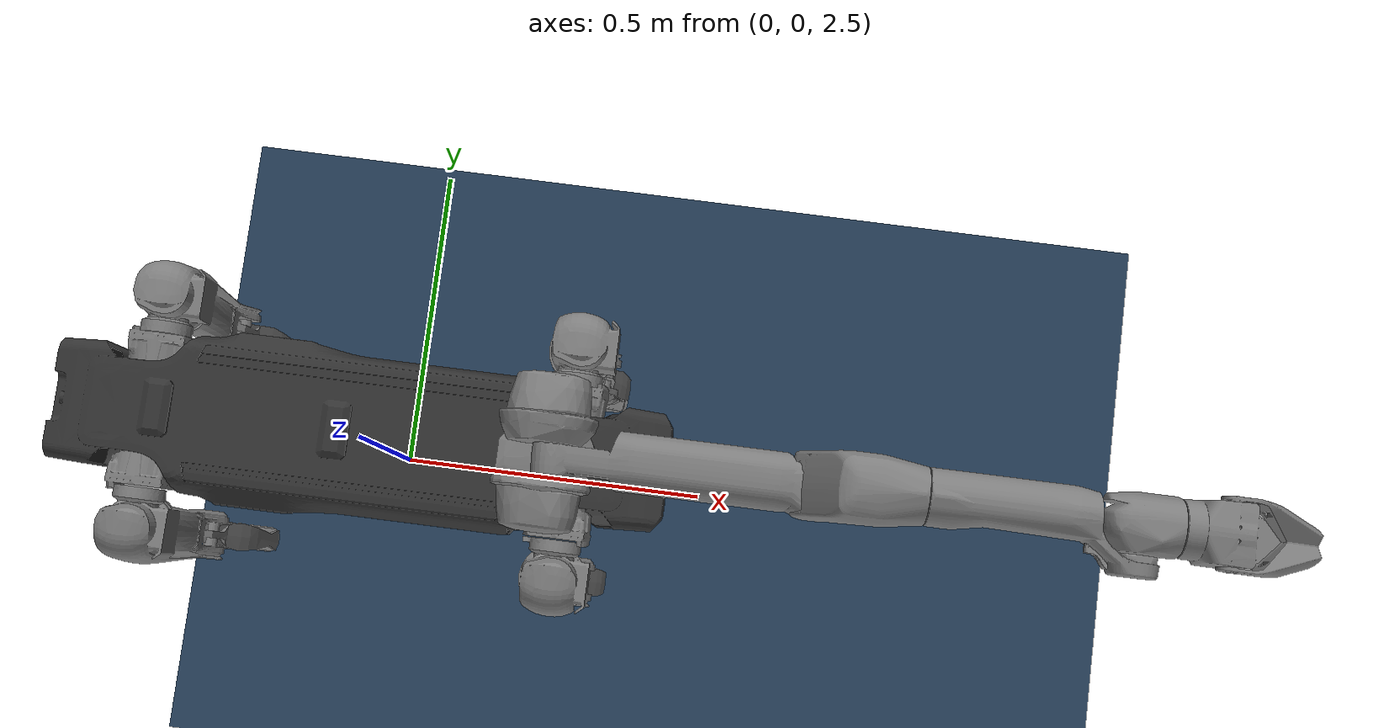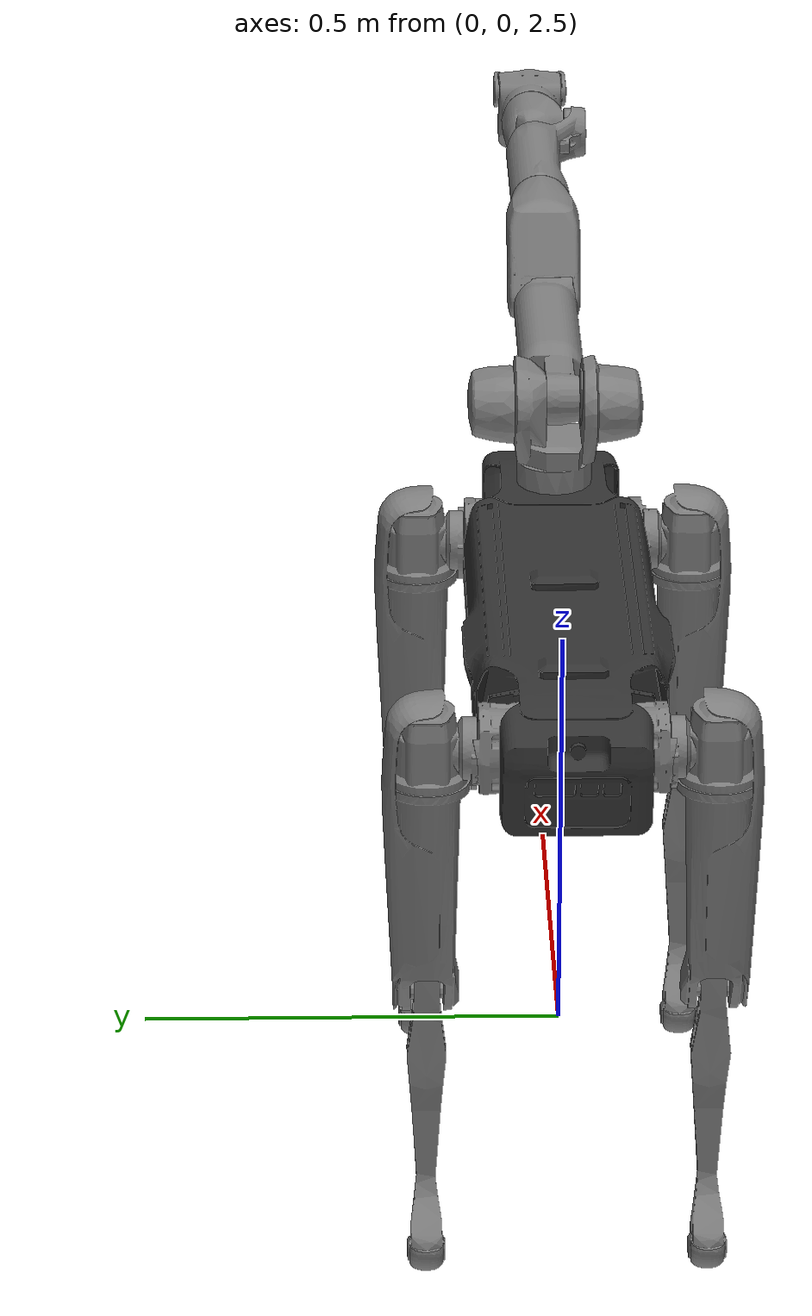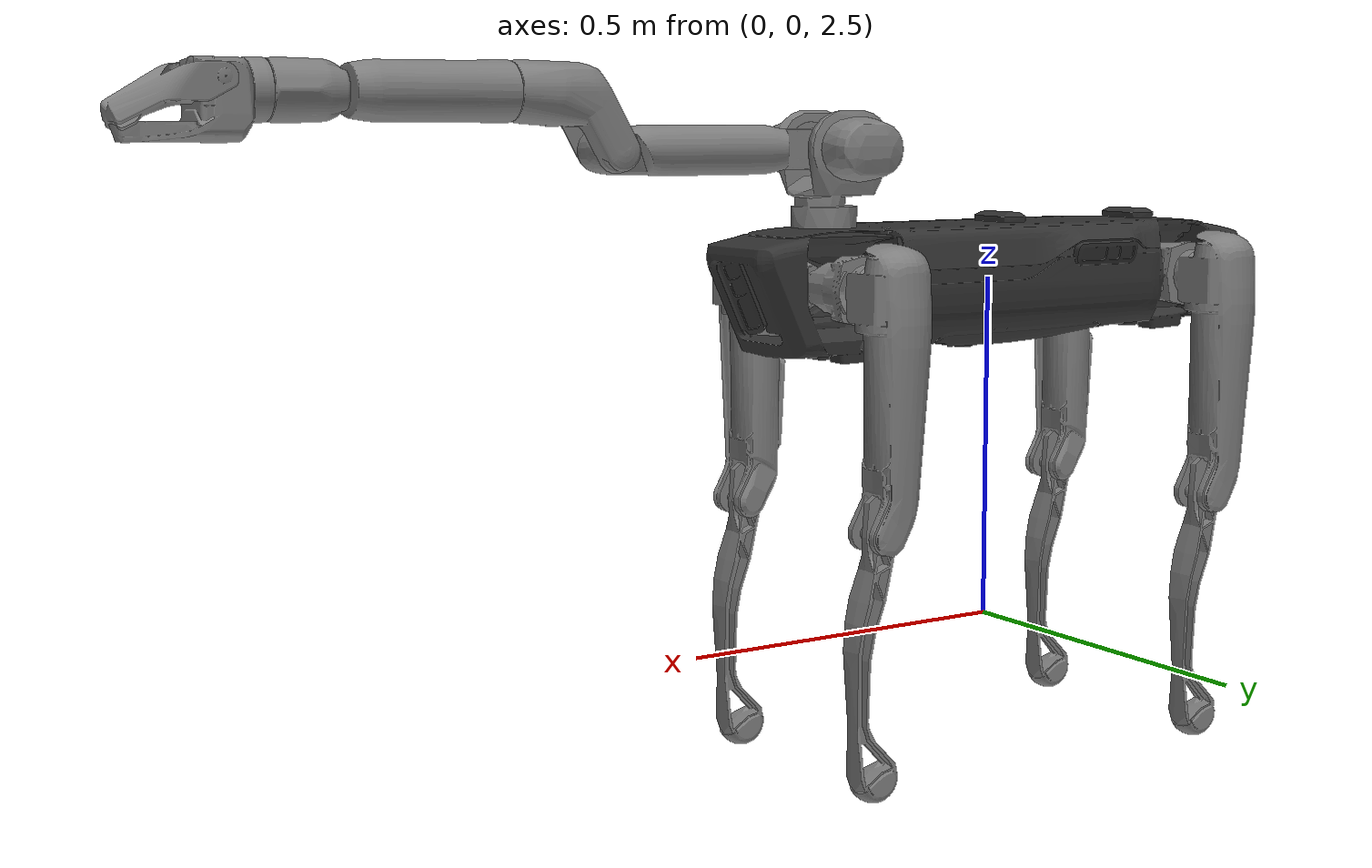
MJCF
<mujoco model="spot">
    <compiler angle="radian" meshdir="./meshes" />
    <size njmax="500" nconmax="100" />

    <default class="a1">
      <geom friction="0.6" margin="0.001"/>
      <joint axis="0 1 0" damping="2" armature="0.01" frictionloss="0.2"/>
      <position kp="100" forcerange="-33.5 33.5" forcelimited="true"/>
      <default class="abduction">
        <joint axis="1 0 0" damping="1" range="-0.802851 0.802851"/>
        <position ctrlrange="-0.802851 0.802851" ctrllimited="true"/>
      </default>
      <default class="hip">
        <joint range="-1.0472 4.18879"/>
        <position ctrlrange="-1.0472 4.18879" ctrllimited="true"/>
      </default>
      <default class="knee">
        <joint range="-2.69653 -0.916298"/>
        <position ctrlrange="-2.69653 -0.916298" ctrllimited="true"/>
      </default>
      <default class="visual">
        <geom type="mesh" contype="0" conaffinity="0" group="2" material="dark"/>
      </default>
      <default class="collision">
        <geom group="3" type="capsule"/>
        <default class="hip_left">
          <geom size="0.04 0.04" quat="1 1 0 0" type="cylinder" pos="0 0.055 0"/>
        </default>
        <default class="hip_right">
          <geom size="0.04 0.04" quat="1 1 0 0" type="cylinder" pos="0 -0.055 0"/>
        </default>
        <default class="thigh1">
          <geom size="0.015" fromto="-0.02 0 0 -0.02 0 -0.16"/>
        </default>
        <default class="thigh2">
          <geom size="0.015" fromto="0 0 0 -0.02 0 -0.1"/>
        </default>
        <default class="thigh3">
          <geom size="0.015" fromto="-0.02 0 -0.16 0 0 -0.2"/>
        </default>
        <default class="calf1">
          <geom size="0.01" fromto="0 0 0 0.02 0 -0.13"/>
        </default>
        <default class="calf2">
          <geom size="0.01" fromto="0.02 0 -0.13 0 0 -0.2"/>
        </default>
        <default class="foot">
          <geom type="sphere" size="0.02" pos="0 0 -0.2" priority="1" solimp="0.015 1 0.031"
              condim="6" friction="0.8 0.02 0.01"/>
        </default>
      </default>

    <default class="arm">
      <material specular="0.5" shininess="0.25"/>
      <joint armature="0.1" damping="1" axis="0 0 1" range="-2.8973 2.8973"/>
      <general dyntype="none" biastype="affine" ctrlrange="-2.8973 2.8973" ctrllimited="true" forcerange="-87 87" forcelimited="true"/>
      <default class="finger">
        <joint axis="0 1 0" type="slide" range="0 0.04"/>
      </default>
    </default>

    </default>

    <asset>
        <texture type="skybox" builtin="gradient" rgb1="0.3 0.5 0.7" rgb2="0 0 0" width="512"
            height="3072"/>
        <texture type="2d" name="groundplane" builtin="checker" mark="edge" rgb1="0.2 0.3 0.4"
            rgb2="0.1 0.2 0.3" markrgb="0.8 0.8 0.8" width="300" height="300"/>
        <material name="groundplane" texture="groundplane" texuniform="true" texrepeat="5 5"
            reflectance="0.2"/>

        <mesh name="spot_body" file="spot_body.stl" />
        <mesh name="fl_hip" file="fl_hip.stl" />
        <mesh name="fr_hip" file="fr_hip.stl" />
        <mesh name="hl_hip" file="hl_hip.stl" />
        <mesh name="hr_hip" file="hr_hip.stl" />
        <mesh name="fl_uleg" file="fl_uleg.stl" />
        <mesh name="fr_uleg" file="fr_uleg.stl" />
        <mesh name="hl_uleg" file="hl_uleg.stl" />
        <mesh name="hr_uleg" file="hr_uleg.stl" />
        <mesh name="lleg" file="lleg.stl" />
        <mesh name="arm0_link_sh0" file="arm0_link_sh0.stl" />
        <mesh name="arm0_link_sh1" file="arm0_link_sh1.stl" />
        <mesh name="arm0_link_hr0" file="arm0_link_hr0.stl" />
        <mesh name="arm0_link_el0" file="arm0_link_el0.stl" />
        <mesh name="arm0_link_el1" file="arm0_link_el1.stl" />
        <mesh name="arm0_link_wr0" file="arm0_link_wr0.stl" />
        <mesh name="arm0_link_wr1" file="arm0_link_wr1.stl" />
        <mesh name="arm0_link_fngr" file="arm0_link_fngr.stl" />
    </asset>
    <worldbody>
        <light pos="0 0 1.5" dir="0 0 -1" directional="true"/>
        <geom name="floor" size="0 0 0.05" type="plane" material="groundplane"/>

        <body name="base" pos="0 0 3">
            <inertial pos="0 0 -0.00496172" quat="0 0.707107 0 0.707107" mass="16.7077" diaginertia="0.569454 0.549231 0.0815438" />
            <joint name="world_joint" type="free" />
            <geom type="mesh" contype="0" conaffinity="1" group="1" rgba="0.2 0.2 0.2 1" mesh="spot_body" />
            <body name="fl.hip" pos="0.29785 0.055 0">
                <inertial pos="-0.0158674 0.00855842 9.03e-06" quat="-0.137996 0.694859 0.131743 0.693377" mass="1.13688" diaginertia="0.00172904 0.00166127 0.00114996" />
                <joint name="fl.hx" pos="0 0 0" axis="1 0 0" limited="true" range="-0.785398 0.785398" />
                <geom type="mesh" contype="0" conaffinity="1" group="1" mesh="fl_hip" />
                <body name="fl.uleg" pos="0 0.110945 0">
                    <inertial pos="0.00214442 -0.0111018 -0.078812" quat="0.998684 0.0454551 -0.0106253 -0.0212473" mass="2.2562" diaginertia="0.0269394 0.0260254 0.00298666" />
                    <joint name="fl.hy" pos="0 0 0" axis="0 1 0" limited="true" range="-0.898845 2.29511" />
                    <geom type="mesh" contype="0" conaffinity="1" group="1" mesh="fl_uleg" />
                    <body name="fl.lleg" pos="0.025 0 -0.3205">
                        <inertial pos="0.0059736 0 -0.174664" quat="0.707099 -0.00339701 -0.00339701 0.707099" mass="0.33" diaginertia="0.00709946 0.00701419 0.000144656" />
                        <joint name="fl.kn" pos="0 0 0" axis="0 1 0" limited="true" range="-2.7929 -0.2471" />
                        <geom type="mesh" contype="0" conaffinity="1" group="1" mesh="lleg" />
                    </body>
                </body>
            </body>
            <body name="fr.hip" pos="0.29785 -0.055 0">
                <inertial pos="-0.0158674 -0.00855842 9.03e-06" quat="0.137996 0.694859 -0.131743 0.693377" mass="1.13688" diaginertia="0.00172904 0.00166127 0.00114996" />
                <joint name="fr.hx" pos="0 0 0" axis="1 0 0" limited="true" range="-0.785398 0.785398" />
                <geom type="mesh" contype="0" conaffinity="1" group="1" mesh="fr_hip" />
                <body name="fr.uleg" pos="0 -0.110945 0">
                    <inertial pos="0.00214442 0.0111018 -0.078812" quat="0.998684 -0.0454551 -0.0106253 0.0212473" mass="2.2562" diaginertia="0.0269394 0.0260254 0.00298666" />
                    <joint name="fr.hy" pos="0 0 0" axis="0 1 0" limited="true" range="-0.898845 2.29511" />
                    <geom type="mesh" contype="0" conaffinity="1" group="1" mesh="fr_uleg" />
                    <body name="fr.lleg" pos="0.025 0 -0.3205">
                        <inertial pos="0.0059736 0 -0.174664" quat="0.707099 -0.00339701 -0.00339701 0.707099" mass="0.33" diaginertia="0.00709946 0.00701419 0.000144656" />
                        <joint name="fr.kn" pos="0 0 0" axis="0 1 0" limited="true" range="-2.7929 -0.2471" />
                        <geom type="mesh" contype="0" conaffinity="1" group="1" mesh="lleg" />
                    </body>
                </body>
            </body>
            <body name="hl.hip" pos="-0.29785 0.055 0">
                <inertial pos="0.0158674 0.00855842 9.03e-06" quat="0.131743 0.693377 -0.137996 0.694859" mass="1.13688" diaginertia="0.00172904 0.00166127 0.00114996" />
                <joint name="hl.hx" pos="0 0 0" axis="1 0 0" limited="true" range="-0.785398 0.785398" />
                <geom type="mesh" contype="0" conaffinity="1" group="1" mesh="hl_hip" />
                <body name="hl.uleg" pos="0 0.110945 0">
                    <inertial pos="0.00214442 -0.0111018 -0.078812" quat="0.998684 0.0454551 -0.0106253 -0.0212473" mass="2.2562" diaginertia="0.0269394 0.0260254 0.00298666" />
                    <joint name="hl.hy" pos="0 0 0" axis="0 1 0" limited="true" range="-0.898845 2.29511" />
                    <geom type="mesh" contype="0" conaffinity="1" group="1" mesh="hl_uleg" />
                    <body name="hl.lleg" pos="0.025 0 -0.3205">
                        <inertial pos="0.0059736 0 -0.174664" quat="0.707099 -0.00339701 -0.00339701 0.707099" mass="0.33" diaginertia="0.00709946 0.00701419 0.000144656" />
                        <joint name="hl.kn" pos="0 0 0" axis="0 1 0" limited="true" range="-2.7929 -0.2471" />
                        <geom type="mesh" contype="0" conaffinity="1" group="1" mesh="lleg" />
                    </body>
                </body>
            </body>
            <body name="hr.hip" pos="-0.29785 -0.055 0">
                <inertial pos="0.0158674 -0.00855842 9.03e-06" quat="-0.131743 0.693377 0.137996 0.694859" mass="1.13688" diaginertia="0.00172904 0.00166127 0.00114996" />
                <joint name="hr.hx" pos="0 0 0" axis="1 0 0" limited="true" range="-0.785398 0.785398" />
                <geom type="mesh" contype="0" conaffinity="1" group="1" mesh="hr_hip" />
                <body name="hr.uleg" pos="0 -0.110945 0">
                    <inertial pos="0.00214442 0.0111018 -0.078812" quat="0.998684 -0.0454551 -0.0106253 0.0212473" mass="2.2562" diaginertia="0.0269394 0.0260254 0.00298666" />
                    <joint name="hr.hy" pos="0 0 0" axis="0 1 0" limited="true" range="-0.898845 2.29511" />
                    <geom type="mesh" contype="0" conaffinity="1" group="1" mesh="hr_uleg" />
                    <body name="hr.lleg" pos="0.025 0 -0.3205">
                        <inertial pos="0.0059736 0 -0.174664" quat="0.707099 -0.00339701 -0.00339701 0.707099" mass="0.33" diaginertia="0.00709946 0.00701419 0.000144656" />
                        <joint name="hr.kn" pos="0 0 0" axis="0 1 0" limited="true" range="-2.7929 -0.2471" />
                        <geom type="mesh" contype="0" conaffinity="1" group="1" mesh="lleg" />
                    </body>
                </body>
            </body>
            <body name="arm0.link_sh0" pos="0.292 0 0.188">
                <inertial pos="-0.008399 0.000272 -0.024603" quat="0.710827 0.700855 0.0423863 -0.0416066" mass="1.9047" diaginertia="0.00891905 0.00728042 0.00492153" />
                <joint name="arm0.sh0" pos="0 0 0" axis="0 0 1" limited="true" range="-2.61799 3.14159" frictionloss="10" />
                <geom type="mesh" contype="1" conaffinity="1" group="1" mesh="arm0_link_sh0" />
                <body name="arm0.link_sh1" pos="0 0 0">
                    <inertial pos="0.0808491 -0.00167243 0.00045644" quat="-0.00467017 0.708456 0.00702831 0.705705" mass="1.85702" diaginertia="0.0281997 0.0270454 0.00260818" />
                    <joint name="arm0.sh1" pos="0 0 0" axis="0 1 0" limited="true" range="-3.14159 0.523599" frictionloss="10" />
                    <geom type="mesh" contype="1" conaffinity="1" group="1" mesh="arm0_link_sh1" />
                    <geom type="mesh" contype="1" conaffinity="1" group="1" mesh="arm0_link_hr0" />
                    <body name="arm0.link_el0" pos="0.3385 0 0">
                        <inertial pos="0.0447662 -0.0027113 0.0499136" quat="0.0923782 0.888458 0.19384 0.40563" mass="0.94832" diaginertia="0.00286401 0.00265579 0.000960161" />
                        <joint name="arm0.el0" pos="0 0 0" axis="0 1 0" limited="true" range="0 3.14159" frictionloss="10" />
                        <geom type="mesh" contype="1" conaffinity="1" group="1" mesh="arm0_link_el0" />
                        <body name="arm0.link_el1" pos="0.4033 0 0.075">
                            <inertial pos="-0.168671 -0.0161612 1.149e-05" quat="0.488034 0.425158 0.565043 0.511654" mass="1.01755" diaginertia="0.0169253 0.0168986 0.000746021" />
                            <joint name="arm0.el1" pos="0 0 0" axis="1 0 0" limited="true" range="-2.79253 2.79253" frictionloss="10" />
                            <geom type="mesh" contype="1" conaffinity="1" group="1" mesh="arm0_link_el1" />
                            <body name="arm0.link_wr0" pos="0 0 0">
                                <inertial pos="0.00952465 -0.0114441 1.86e-06" quat="0.308237 0.652328 -0.273781 0.636005" mass="0.582637" diaginertia="0.000536182 0.000528639 0.000388399" />
                                <joint name="arm0.wr0" pos="0 0 0" axis="0 1 0" limited="true" range="-1.8326 1.8326" frictionloss="10" />
                                <geom type="mesh" contype="1" conaffinity="1" group="1" mesh="arm0_link_wr0" />
                                <body name="arm0.link_wr1" pos="0 0 0">
                                    <inertial pos="0.0975128 9.265e-05 -0.0112052" quat="0.592778 0.385047 0.386229 0.592605" mass="0.933353" diaginertia="0.00197018 0.00182151 0.00082476" />
                                    <joint name="arm0.wr1" pos="0 0 0" axis="1 0 0" limited="true" range="-2.87989 2.87979" frictionloss="10" />
                                    <geom type="mesh" contype="1" conaffinity="1" group="1" mesh="arm0_link_wr1" />
                                    <body name="arm0.link_fngr" pos="0.11745 0 0.01482">
                                        <inertial pos="0.0356518 0.000672 -0.0122752" quat="0.00481109 0.567709 0.0124565 0.823121" mass="0.223833" diaginertia="0.000648792 0.000484516 0.000194933" />
                                        <joint name="arm0.f1x" pos="0 0 0" axis="0 1 0" limited="true" range="-1.5708 0" frictionloss="10" />
                                        <geom type="mesh" contype="1" conaffinity="1" group="1" mesh="arm0_link_fngr" />
                                    </body>
                                </body>
                            </body>
                        </body>
                    </body>
                </body>
            </body>
        </body>
    </worldbody>

  <actuator>
    <position class="abduction" name="FR_hip" joint="fr.hx"/>
    <position class="hip" name="FR_thigh" joint="fr.hy"/>
    <position class="knee" name="FR_calf" joint="fr.kn"/>

    <position class="abduction" name="FL_hip" joint="fl.hx"/>
    <position class="hip" name="FL_thigh" joint="fl.hy"/>
    <position class="knee" name="FL_calf" joint="fl.kn"/>

    <position class="abduction" name="RR_hip" joint="hr.hx"/>
    <position class="hip" name="RR_thigh" joint="hr.hy"/>
    <position class="knee" name="RR_calf" joint="hr.kn"/>

    <position class="abduction" name="RL_hip" joint="hl.hx"/>
    <position class="hip" name="RL_thigh" joint="hl.hy"/>
    <position class="knee" name="RL_calf" joint="hl.kn"/>

    <motor name='arm_shoulder_1' ctrllimited="true" ctrlrange="-2 2" joint='arm0.sh0' gear="101"/> <!--range -150 150-->
    <motor name='arm_shoulder_2' ctrllimited="true" ctrlrange="-2 2"  joint='arm0.sh1' gear="101"/>
    <motor name='arm_elbow_1' ctrllimited="true" ctrlrange="-2 2" joint='arm0.el0' gear="101" />
    <motor name='arm_elbow_2' ctrllimited="true" ctrlrange="-1 1"  joint='arm0.el1' gear="101"/>  <!--range -28 28-->
    <motor name='arm_wrist_1' ctrllimited="true" ctrlrange="-1 1"  joint='arm0.wr0' gear="101"/>
    <motor name='arm_wrist_2' ctrllimited="true" ctrlrange="-1 1"  joint='arm0.wr1' gear="101"/>
    <motor name='arm_finger' ctrllimited="true" ctrlrange="-1 1"  joint='arm0.f1x' gear="101"/>

  </actuator>

</mujoco>
